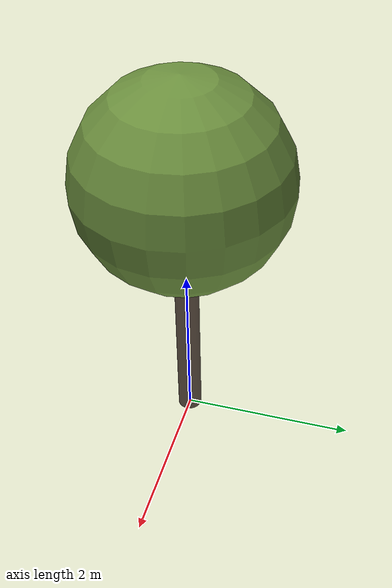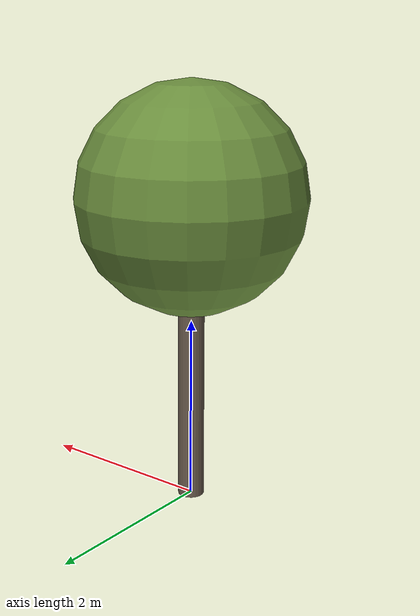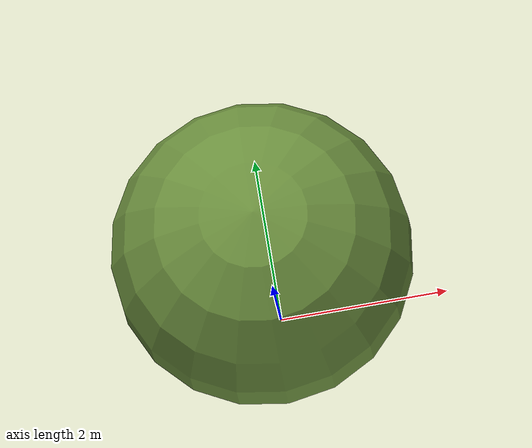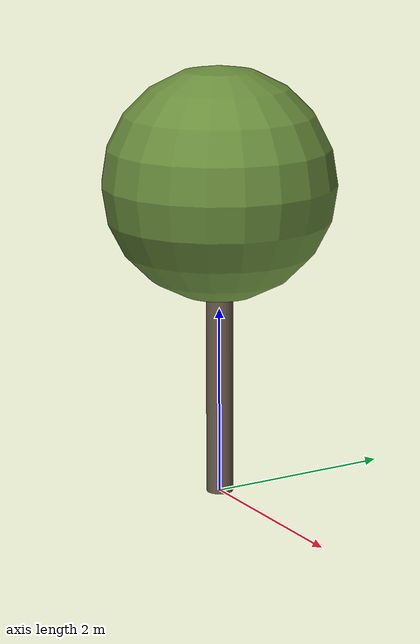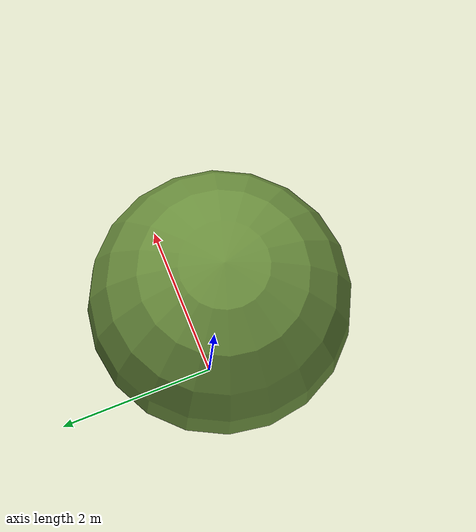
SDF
<?xml version="1.0" ?>
<sdf version="1.10">
  <model name="olivier_provence_04">
    <static>true</static>

    <!-- Tronc -->
    <link name="trunk">
      <pose>0 0 1.4834767167899159 0 0 0</pose>
      <visual name="trunk_visual">
        <geometry>
          <cylinder>
            <radius>0.14122932638052715</radius>
            <length>2.9669534335798318</length>
          </cylinder>
        </geometry>
        <material>
          <ambient>0.42 0.36 0.30 1</ambient>
          <diffuse>0.42 0.36 0.30 1</diffuse>
          <specular>0.1 0.1 0.1 1</specular>
        </material>
      </visual>
      <collision name="trunk_collision">
        <geometry>
          <cylinder>
            <radius>0.14122932638052715</radius>
            <length>2.9669534335798318</length>
          </cylinder>
        </geometry>
      </collision>
    </link>

    <!-- Feuillage -->
    <link name="crown">
      <pose>0 0 3.3351638649012703 0 0 0</pose>
      <visual name="crown_visual">
        <geometry>
          <sphere>
              <radius>1.2273681044047955</radius>
            </sphere>
        </geometry>
        <material>
          <ambient>0.42 0.56 0.24 1</ambient>
          <diffuse>0.42 0.56 0.24 1</diffuse>
          <specular>0.1 0.1 0.1 1</specular>
        </material>
      </visual>
      <collision name="crown_collision">
        <geometry>
          <sphere>
            <radius>0.9818944835238365</radius>
          </sphere>
        </geometry>
      </collision>
    </link>

    <!-- Joint tronc-feuillage -->
    <joint name="trunk_crown_joint" type="fixed">
      <parent>trunk</parent>
      <child>crown</child>
    </joint>

  </model>
</sdf>
